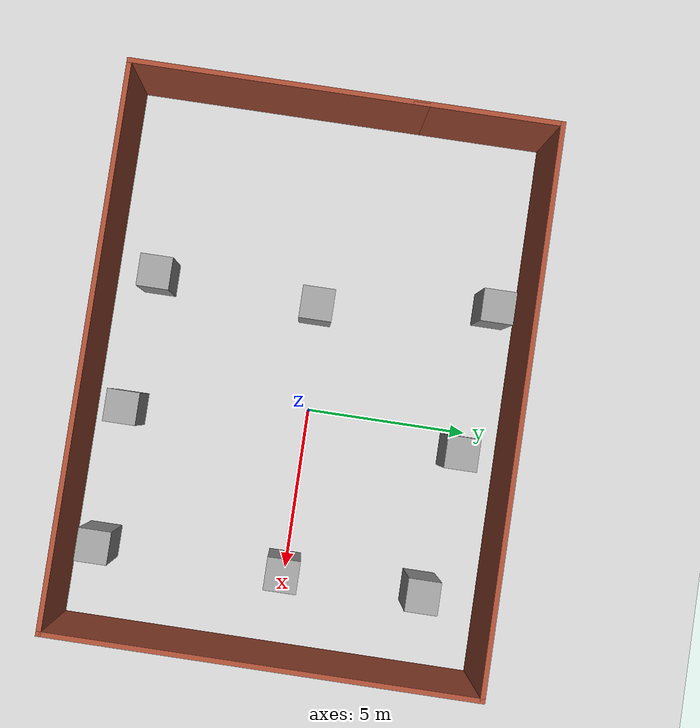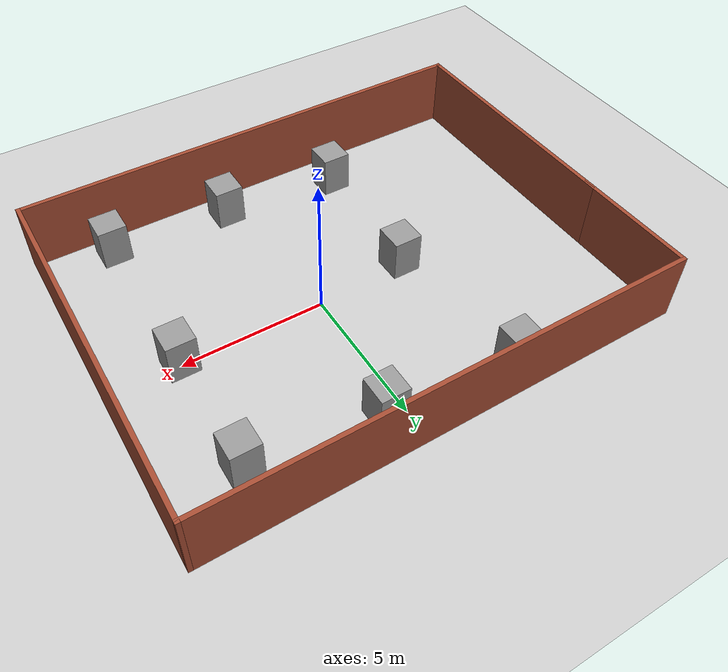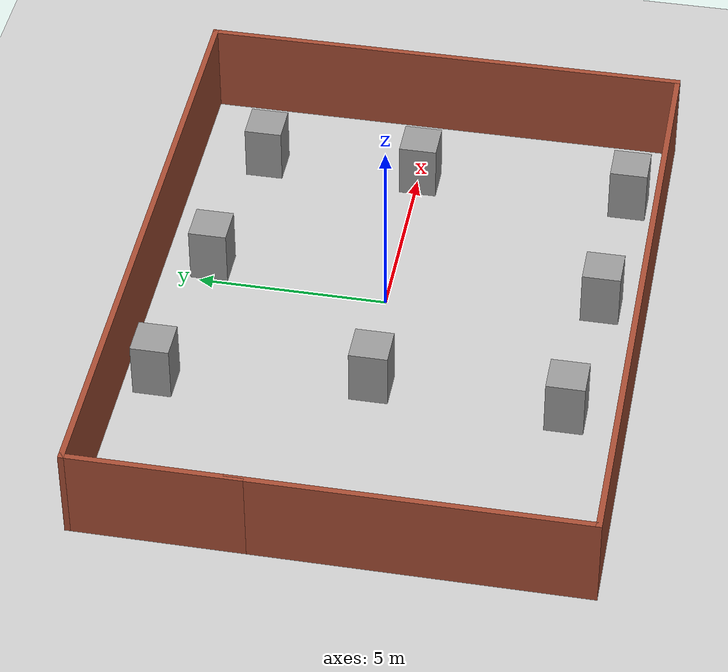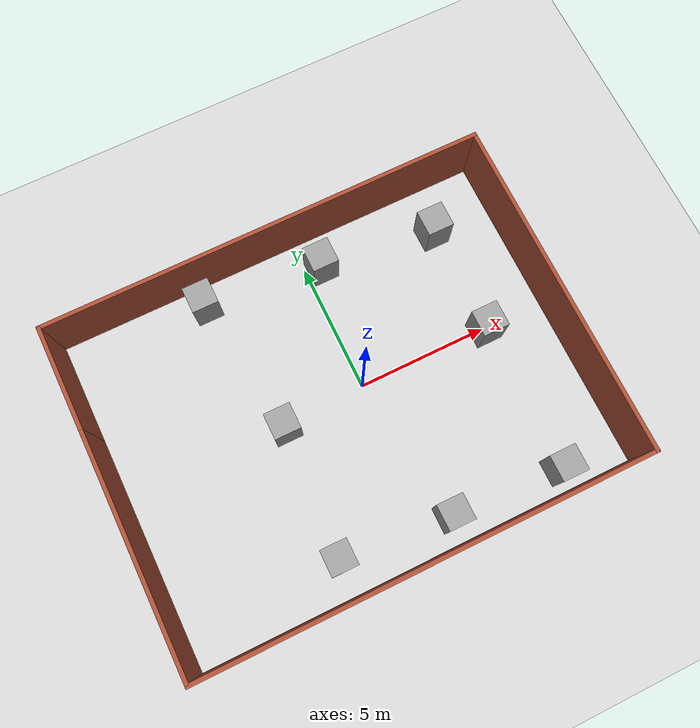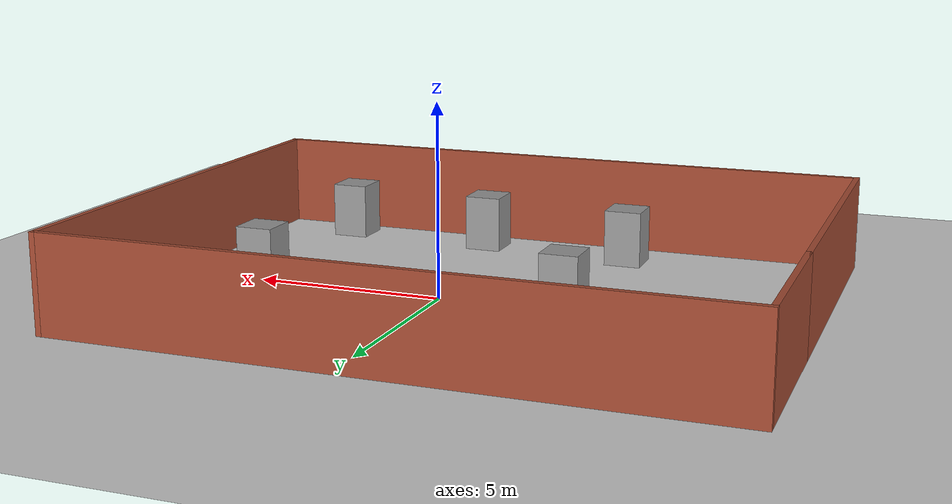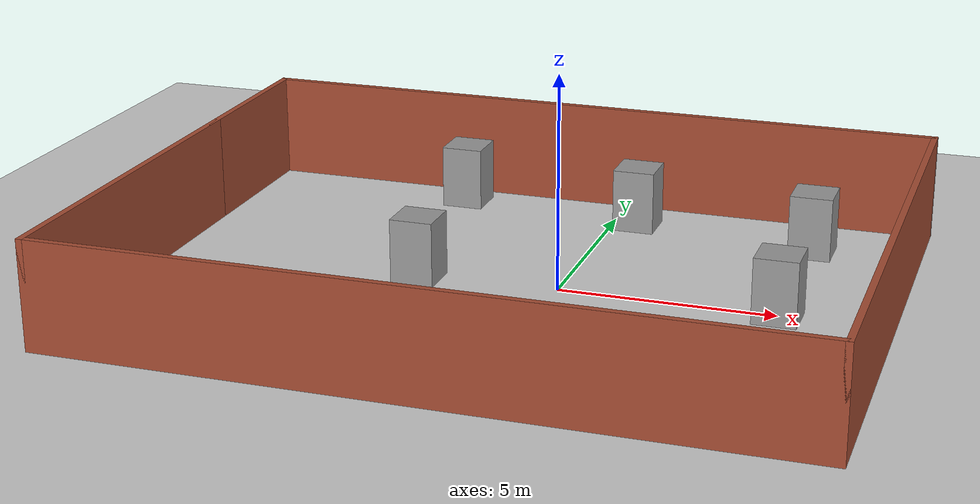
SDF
<sdf version="1.7">
 <world name="default">
  <light name="sun" type="directional">
   <pose>0 0 10 0 -0 0</pose>
   <diffuse>0.8 0.8 0.8 1</diffuse>
   <specular>0.2 0.2 0.2 1</specular>
   <attenuation>
    <range>1000</range>
    <constant>0.9</constant>
    <linear>0.01</linear>
    <quadratic>0.001</quadratic>
   </attenuation>
   <direction>-0.5 0.1 -0.9</direction>
   <spot><inner_angle>0</inner_angle><outer_angle>0</outer_angle><falloff>0</falloff></spot>
  </light>
  <model name="ground_plane">
   <static>1</static>
   <link name="link">
    <collision name="collision">
     <geometry><plane><normal>0 0 1</normal><size>100 100</size></plane></geometry>
     <surface><friction><ode><mu>100</mu><mu2>50</mu2></ode></friction></surface>
    </collision>
    <visual name="visual">
     <cast_shadows>0</cast_shadows>
     <geometry><plane><normal>0 0 1</normal><size>100 100</size></plane></geometry>
     <material>
      <script><uri>file://media/materials/scripts/gazebo.material</uri><name>Gazebo/Grey</name></script>
     </material>
    </visual>
   </link>
  </model>
  <gravity>0 0 -9.8</gravity>
  <magnetic_field>6e-06 2.3e-05 -4.2e-05</magnetic_field>
  <atmosphere type="adiabatic"/>
  <physics type="ode">
   <max_step_size>0.001</max_step_size>
   <real_time_factor>1</real_time_factor>
   <real_time_update_rate>1000</real_time_update_rate>
  </physics>
  <scene><ambient>0.4 0.4 0.4 1</ambient><background>0.7 0.7 0.7 1</background><shadows>1</shadows></scene>
  <spherical_coordinates>
   <surface_model>EARTH_WGS84</surface_model>
   <latitude_deg>0</latitude_deg>
   <longitude_deg>0</longitude_deg>
   <elevation>0</elevation>
   <heading_deg>0</heading_deg>
  </spherical_coordinates>
  <model name="unit_box">
   <pose>-3.23332 -0.223227 0.499995 0 1e-05 0</pose>
   <link name="link">
    <inertial>
     <mass>10</mass>
     <inertia>
      <ixx>0.166667</ixx>
      <ixy>0</ixy>
      <ixz>0</ixz>
      <iyy>0.166667</iyy>
      <iyz>0</iyz>
      <izz>0.166667</izz>
     </inertia>
    </inertial>
    <collision name="collision"><geometry><box><size>1 1 2</size></box></geometry></collision>
    <visual name="visual">
     <geometry><box><size>1 1 2</size></box></geometry>
     <material>
      <script><name>Gazebo/Grey</name><uri>file://media/materials/scripts/gazebo.material</uri></script>
     </material>
    </visual>
   </link>
  </model>
  <model name="unit_box_0">
   <pose>-3.46759 -5.24017 0.499995 -1e-05 -0 -0</pose>
   <link name="link">
    <inertial>
     <mass>10</mass>
     <inertia>
      <ixx>0.166667</ixx>
      <ixy>0</ixy>
      <ixz>0</ixz>
      <iyy>0.166667</iyy>
      <iyz>0</iyz>
      <izz>0.166667</izz>
     </inertia>
    </inertial>
    <collision name="collision"><geometry><box><size>1 1 2</size></box></geometry></collision>
    <visual name="visual">
     <geometry><box><size>1 1 2</size></box></geometry>
     <material>
      <script><name>Gazebo/Grey</name><uri>file://media/materials/scripts/gazebo.material</uri></script>
     </material>
    </visual>
   </link>
  </model>
  <model name="unit_box_1">
   <pose>0.733287 -5.6027 0.499995 0 1e-05 0</pose>
   <link name="link">
    <inertial>
     <mass>10</mass>
     <inertia>
      <ixx>0.166667</ixx>
      <ixy>0</ixy>
      <ixz>0</ixz>
      <iyy>0.166667</iyy>
      <iyz>0</iyz>
      <izz>0.166667</izz>
     </inertia>
    </inertial>
    <collision name="collision"><geometry><box><size>1 1 2</size></box></geometry></collision>
    <visual name="visual">
     <geometry><box><size>1 1 2</size></box></geometry>
     <material>
      <script><name>Gazebo/Grey</name><uri>file://media/materials/scripts/gazebo.material</uri></script>
     </material>
    </visual>
   </link>
  </model>
  <model name="unit_box_2">
   <pose>4.98402 -5.8015 0.499995 -1e-05 -0 -0</pose>
   <link name="link">
    <inertial>
     <mass>10</mass>
     <inertia>
      <ixx>0.166667</ixx>
      <ixy>0</ixy>
      <ixz>0</ixz>
      <iyy>0.166667</iyy>
      <iyz>0</iyz>
      <izz>0.166667</izz>
     </inertia>
    </inertial>
    <collision name="collision"><geometry><box><size>1 1 2</size></box></geometry></collision>
    <visual name="visual">
     <geometry><box><size>1 1 2</size></box></geometry>
     <material>
      <script><name>Gazebo/Grey</name><uri>file://media/materials/scripts/gazebo.material</uri></script>
     </material>
    </visual>
   </link>
  </model>
  <model name="unit_box_3">
   <pose>5.0076 -0.070593 0.499995 0 1e-05 0</pose>
   <link name="link">
    <inertial>
     <mass>10</mass>
     <inertia>
      <ixx>0.166667</ixx>
      <ixy>0</ixy>
      <ixz>0</ixz>
      <iyy>0.166667</iyy>
      <iyz>0</iyz>
      <izz>0.166667</izz>
     </inertia>
    </inertial>
    <collision name="collision"><geometry><box><size>1 1 2</size></box></geometry></collision>
    <visual name="visual">
     <geometry><box><size>1 1 2</size></box></geometry>
     <material>
      <script><name>Gazebo/Grey</name><uri>file://media/materials/scripts/gazebo.material</uri></script>
     </material>
    </visual>
   </link>
  </model>
  <model name="unit_box_4">
   <pose>0.602941 4.76197 0.499995 -1e-05 -0 -0</pose>
   <link name="link">
    <inertial>
     <mass>10</mass>
     <inertia>
      <ixx>0.166667</ixx>
      <ixy>0</ixy>
      <ixz>0</ixz>
      <iyy>0.166667</iyy>
      <iyz>0</iyz>
      <izz>0.166667</izz>
     </inertia>
    </inertial>
    <collision name="collision"><geometry><box><size>1 1 2</size></box></geometry></collision>
    <visual name="visual">
     <geometry><box><size>1 1 2</size></box></geometry>
     <material>
      <script><name>Gazebo/Grey</name><uri>file://media/materials/scripts/gazebo.material</uri></script>
     </material>
    </visual>
   </link>
  </model>
  <model name="unit_box_5">
   <pose>-3.95273 5.22442 0.499995 0 1e-05 0</pose>
   <link name="link">
    <inertial>
     <mass>10</mass>
     <inertia>
      <ixx>0.166667</ixx>
      <ixy>0</ixy>
      <ixz>0</ixz>
      <iyy>0.166667</iyy>
      <iyz>0</iyz>
      <izz>0.166667</izz>
     </inertia>
    </inertial>
    <collision name="collision"><geometry><box><size>1 1 2</size></box></geometry></collision>
    <visual name="visual">
     <geometry><box><size>1 1 2</size></box></geometry>
     <material>
      <script><name>Gazebo/Grey</name><uri>file://media/materials/scripts/gazebo.material</uri></script>
     </material>
    </visual>
   </link>
  </model>
  <model name="unit_box_6">
   <pose>5.00631 4.19923 0.499995 -1e-05 -0 0</pose>
   <link name="link">
    <inertial>
     <mass>10</mass>
     <inertia>
      <ixx>0.166667</ixx>
      <ixy>0</ixy>
      <ixz>0</ixz>
      <iyy>0.166667</iyy>
      <iyz>0</iyz>
      <izz>0.166667</izz>
     </inertia>
    </inertial>
    <collision name="collision"><geometry><box><size>1 1 2</size></box></geometry></collision>
    <visual name="visual">
     <geometry><box><size>1 1 2</size></box></geometry>
     <material>
      <script><name>Gazebo/Grey</name><uri>file://media/materials/scripts/gazebo.material</uri></script>
     </material>
    </visual>
   </link>
  </model>
  <model name="world55.sdf">
   <pose>-0.955551 -0.299124 0 0 -0 0</pose>
   <link name="Wall_1">
    <collision name="Wall_1_Collision">
     <geometry><box><size>9 0.15 2.5</size></box></geometry>
     <pose>0 0 1.25 0 -0 0</pose>
    </collision>
    <visual name="Wall_1_Visual">
     <pose>0 0 1.25 0 -0 0</pose>
     <geometry><box><size>9 0.15 2.5</size></box></geometry>
     <material>
      <script><uri>file://media/materials/scripts/gazebo.material</uri><name>Gazebo/Bricks</name></script>
      <ambient>1 1 1 1</ambient>
     </material>
     <meta><layer>0</layer></meta>
    </visual>
    <pose>-8.425 -2 0 0 -0 -1.5708</pose>
   </link>
   <link name="Wall_3">
    <collision name="Wall_3_Collision">
     <geometry><box><size>17 0.15 2.5</size></box></geometry>
     <pose>0 0 1.25 0 -0 0</pose>
    </collision>
    <visual name="Wall_3_Visual">
     <pose>0 0 1.25 0 -0 0</pose>
     <geometry><box><size>17 0.15 2.5</size></box></geometry>
     <material>
      <script><uri>file://media/materials/scripts/gazebo.material</uri><name>Gazebo/Bricks</name></script>
      <ambient>1 1 1 1</ambient>
     </material>
     <meta><layer>0</layer></meta>
    </visual>
    <pose>0 -6.425 0 0 -0 0</pose>
   </link>
   <link name="Wall_4">
    <collision name="Wall_4_Collision">
     <geometry><box><size>13 0.15 2.5</size></box></geometry>
     <pose>0 0 1.25 0 -0 0</pose>
    </collision>
    <visual name="Wall_4_Visual">
     <pose>0 0 1.25 0 -0 0</pose>
     <geometry><box><size>13 0.15 2.5</size></box></geometry>
     <material>
      <script><uri>file://media/materials/scripts/gazebo.material</uri><name>Gazebo/Bricks</name></script>
      <ambient>1 1 1 1</ambient>
     </material>
     <meta><layer>0</layer></meta>
    </visual>
    <pose>8.425 0 0 0 -0 1.5708</pose>
   </link>
   <link name="Wall_5">
    <collision name="Wall_5_Collision">
     <geometry><box><size>17 0.15 2.5</size></box></geometry>
     <pose>0 0 1.25 0 -0 0</pose>
    </collision>
    <visual name="Wall_5_Visual">
     <pose>0 0 1.25 0 -0 0</pose>
     <geometry><box><size>17 0.15 2.5</size></box></geometry>
     <material>
      <script><uri>file://media/materials/scripts/gazebo.material</uri><name>Gazebo/Bricks</name></script>
      <ambient>1 1 1 1</ambient>
     </material>
     <meta><layer>0</layer></meta>
    </visual>
    <pose>0 6.425 0 0 -0 3.14159</pose>
   </link>
   <link name="Wall_6">
    <collision name="Wall_6_Collision">
     <geometry><box><size>4.5 0.15 2.5</size></box></geometry>
     <pose>0 0 1.25 0 -0 0</pose>
    </collision>
    <visual name="Wall_6_Visual">
     <pose>0 0 1.25 0 -0 0</pose>
     <geometry><box><size>4.5 0.15 2.5</size></box></geometry>
     <material>
      <script><uri>file://media/materials/scripts/gazebo.material</uri><name>Gazebo/Bricks</name></script>
      <ambient>1 1 1 1</ambient>
     </material>
     <meta><layer>0</layer></meta>
    </visual>
    <pose>-8.425 4.25 0 0 -0 -1.5708</pose>
   </link>
   <static>1</static>
  </model>
 </world>
</sdf>
